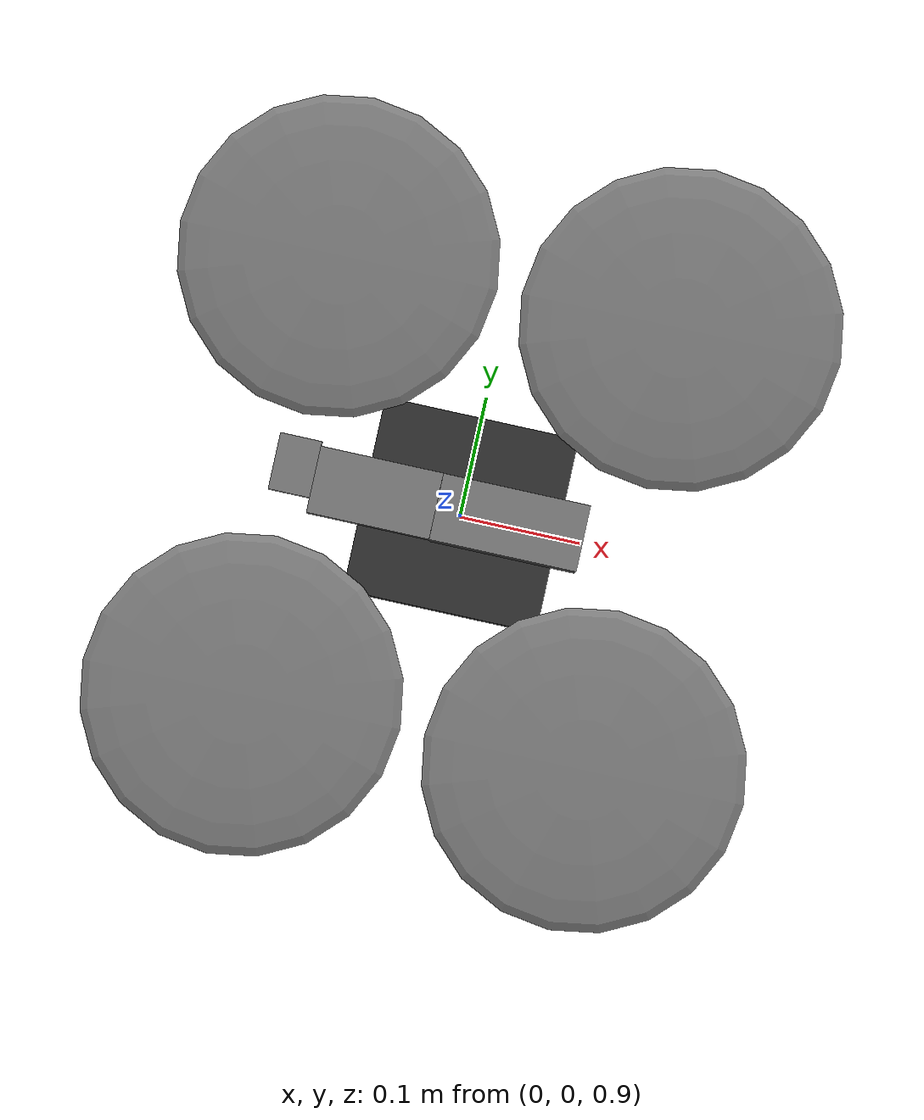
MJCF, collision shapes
<mujoco model="Skydio X2">
<compiler autolimits="true" assetdir="assets"/>
<!-- Уменьшаем timestep для более стабильной симуляции тяжелого и быстрого дрона -->
<option timestep="0.005" density="1.225" viscosity="1.8e-5"/>

<default>
    <default class="x2">
        <geom mass="0"/>
        <!-- УВЕЛИЧЕНА ТЯГА: с 13 до 25 Ньютонов на мотор.
             Суммарно 100Н, что дает TWR ~1.7 для дрона массой 6 кг (1кг дрон + 5кг груз) -->
        <motor ctrlrange="0 25"/>
        <mesh scale="0.01 0.01 0.01"/>

        <default class="visual">
            <geom group="2" type="mesh" contype="0" conaffinity="0"/>
        </default>

        <default class="collision">
            <geom group="3" type="box"/>
            <default class="rotor">
                <geom type="ellipsoid" size=".13 .13 .01"/>
            </default>
        </default>
        <site group="5"/>
    </default>
</default>

<asset>
    <texture type="2d" file="X2_lowpoly_texture_SpinningProps_1024.png"/>
    <material name="phong3SG" texture="X2_lowpoly_texture_SpinningProps_1024"/>
    <material name="invisible" rgba="0 0 0 0"/>
    <mesh class="x2" file="X2_lowpoly.obj"/>
</asset>

<worldbody>
    <light name="spotlight" mode="targetbodycom" target="x2" pos="0 -1 2"/>

    <body name="x2" pos="0 0 1" childclass="x2">
        <freejoint/>

        <!-- Камера слежения (оставлена для отладки) -->
        <camera name="track" pos="1 0 .5" xyaxes="0 1 0 -1 0 2" mode="trackcom"/>

        <!-- Оригинальная камера (оставлена для совместимости, но она смотрит назад) -->
        <camera name="front_camera" pos="-0.16 0 0.02" xyaxes="0 1 0 0 0 1" fovy="90" mode="fixed"/>

		<!-- ИСПРАВЛЕННАЯ FPV КАМЕРА ДЛЯ 3D RL АГЕНТА -->
		<!-- Смотрит СТРОГО ВПЕРЕД (по +X). Исправлена ошибка ориентации. -->
		<!-- Горизонтальный взгляд критичен для оценки высоты крон/зданий при обходе. -->
		<camera name="fpv_cam" pos="0.18 0 0.05" xyaxes="0 -1 0 0.2 0 1" fovy="100" mode="fixed"/>

        <site name="imu" pos="0 0 .02"/>

        <!-- Визуальная сетка дрона -->
        <geom material="phong3SG" mesh="X2_lowpoly" class="visual" quat="0 0 1 1"/>

        <!-- Геометрия столкновений корпуса -->
        <geom class="collision" size=".06 .027 .02" pos=".04 0 .02"/>
        <geom class="collision" size=".06 .027 .02" pos=".04 0 .06"/>
        <geom class="collision" size=".05 .027 .02" pos="-.07 0 .065"/>
        <geom class="collision" size=".023 .017 .01" pos="-.137 .008 .065" quat="1 0 0 1"/>

        <!-- Роторы (визуальные и физически влияющие на инерцию) -->
        <geom name="rotor1" class="rotor" pos="-.14 -.18 .05" mass=".25"/>
        <geom name="rotor2" class="rotor" pos="-.14 .18 .05" mass=".25"/>
        <geom name="rotor3" class="rotor" pos=".14 .18 .08" mass=".25"/>
        <geom name="rotor4" class="rotor" pos=".14 -.18 .08" mass=".25"/>

        <!-- Базовая невидимая масса корпуса -->
        <geom size=".16 .04 .02" pos="0 0 0.02" type="ellipsoid" mass=".325" class="visual" material="invisible"/>

        <!-- НОВАЯ ПОЛЕЗНАЯ НАГРУЗКА 5 КГ -->
        <!-- Добавляем физический объем груза под дроном. MuJoCo автоматически пересчитает центр масс и тензор инерции -->
        <geom name="payload_5kg" type="box" size="0.08 0.08 0.04" pos="0 0 -0.06" rgba="0.2 0.2 0.2 1" mass="5.0" class="collision"/>

        <!-- Точки приложения тяги моторов -->
        <site name="thrust1" pos="-.14 -.18 .05"/>
        <site name="thrust2" pos="-.14 .18 .05"/>
        <site name="thrust3" pos=".14 .18 .08"/>
        <site name="thrust4" pos=".14 -.18 .08"/>
    </body>
</worldbody>

<actuator>
    <!-- gear: первые 3 значения - сила (тяга), последние 3 - момент (реактивный момент для рыскания) -->
    <motor class="x2" name="thrust1" site="thrust1" gear="0 0 1 0 0 -.0201"/>
    <motor class="x2" name="thrust2" site="thrust2" gear="0 0 1 0 0  .0201"/>
    <motor class="x2" name="thrust3" site="thrust3" gear="0 0 1 0 0 -.0201"/>
    <motor class="x2" name="thrust4" site="thrust4" gear="0 0 1 0 0  .0201"/>
</actuator>

<sensor>
    <gyro name="body_gyro" site="imu"/>
    <accelerometer name="body_linacc" site="imu"/>
    <framequat name="body_quat" objtype="site" objname="imu"/>
</sensor>

<keyframe>
    <!-- ОБНОВЛЕННЫЙ HOVER:
         Масса дрона теперь ~6 кг. Тяга на мотор для зависания = (6 * 9.81) / 4 ≈ 14.7 Н -->
    <key name="hover" qpos="0 0 .3 1 0 0 0" ctrl="14.72 14.72 14.72 14.72"/>
</keyframe>
</mujoco>
